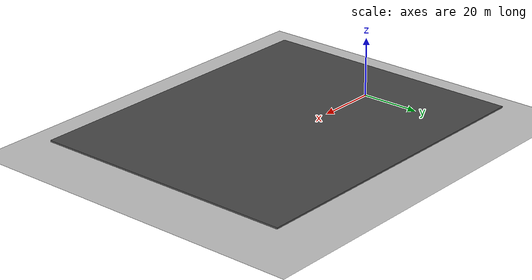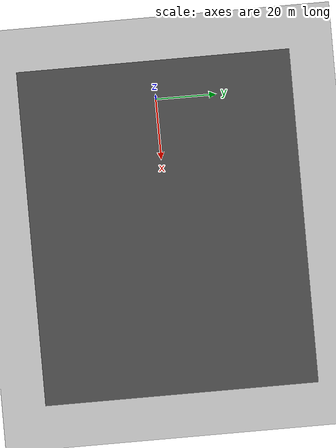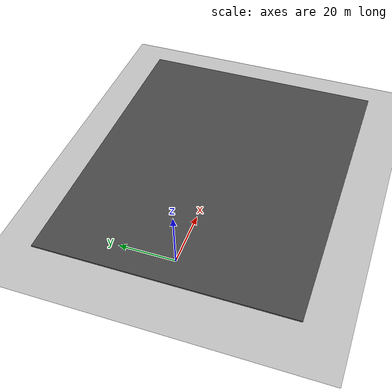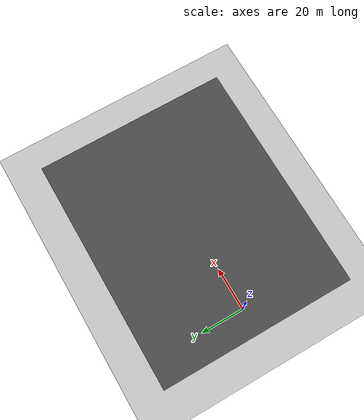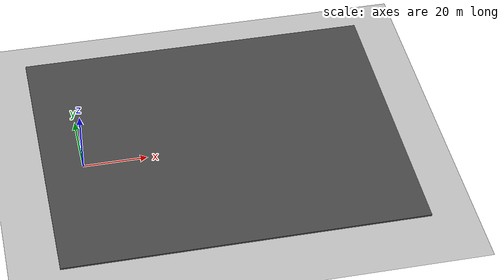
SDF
<?xml version="1.0"?>
<sdf version="1.6">
  <world name="default">
    <include><uri>model://sun</uri></include>
    <include><uri>model://ground_plane</uri></include>
    <plugin name="ros_interface_plugin" filename="librotors_gazebo_ros_interface_plugin.so"/>

    <model name="unseen_mine_shell">
      <static>true</static>
      <link name="shell">
        <!-- Main drift walls, with openings at x=25 north and x=60 both sides. -->
        <collision name="main_north_0_c"><pose>8 4 2 0 0 0</pose><geometry><box><size>26 0.5 4</size></box></geometry></collision>
        <visual name="main_north_0_v"><pose>8 4 2 0 0 0</pose><geometry><box><size>26 0.5 4</size></box></geometry><material><script><name>Gazebo/Grey</name></script></material></visual>
        <collision name="main_north_1_c"><pose>42.5 4 2 0 0 0</pose><geometry><box><size>27 0.5 4</size></box></geometry></collision>
        <visual name="main_north_1_v"><pose>42.5 4 2 0 0 0</pose><geometry><box><size>27 0.5 4</size></box></geometry><material><script><name>Gazebo/Grey</name></script></material></visual>
        <collision name="main_north_2_c"><pose>77 4 2 0 0 0</pose><geometry><box><size>26 0.5 4</size></box></geometry></collision>
        <visual name="main_north_2_v"><pose>77 4 2 0 0 0</pose><geometry><box><size>26 0.5 4</size></box></geometry><material><script><name>Gazebo/Grey</name></script></material></visual>
        <collision name="main_south_0_c"><pose>25.5 -4 2 0 0 0</pose><geometry><box><size>61 0.5 4</size></box></geometry></collision>
        <visual name="main_south_0_v"><pose>25.5 -4 2 0 0 0</pose><geometry><box><size>61 0.5 4</size></box></geometry><material><script><name>Gazebo/Grey</name></script></material></visual>
        <collision name="main_south_1_c"><pose>77 -4 2 0 0 0</pose><geometry><box><size>26 0.5 4</size></box></geometry></collision>
        <visual name="main_south_1_v"><pose>77 -4 2 0 0 0</pose><geometry><box><size>26 0.5 4</size></box></geometry><material><script><name>Gazebo/Grey</name></script></material></visual>
        <collision name="main_west_end_c"><pose>-5 0 2 0 0 0</pose><geometry><box><size>0.5 8 4</size></box></geometry></collision>
        <visual name="main_west_end_v"><pose>-5 0 2 0 0 0</pose><geometry><box><size>0.5 8 4</size></box></geometry><material><script><name>Gazebo/Grey</name></script></material></visual>
        <collision name="main_east_end_c"><pose>90 0 2 0 0 0</pose><geometry><box><size>0.5 8 4</size></box></geometry></collision>
        <visual name="main_east_end_v"><pose>90 0 2 0 0 0</pose><geometry><box><size>0.5 8 4</size></box></geometry><material><script><name>Gazebo/Grey</name></script></material></visual>

        <!-- North loop: legs at x=25/60 and connecting drift at y=30. -->
        <collision name="west_leg_w_c"><pose>21 15 2 0 0 0</pose><geometry><box><size>0.5 22 4</size></box></geometry></collision>
        <visual name="west_leg_w_v"><pose>21 15 2 0 0 0</pose><geometry><box><size>0.5 22 4</size></box></geometry><material><script><name>Gazebo/Grey</name></script></material></visual>
        <collision name="west_leg_e_c"><pose>29 15 2 0 0 0</pose><geometry><box><size>0.5 22 4</size></box></geometry></collision>
        <visual name="west_leg_e_v"><pose>29 15 2 0 0 0</pose><geometry><box><size>0.5 22 4</size></box></geometry><material><script><name>Gazebo/Grey</name></script></material></visual>
        <collision name="east_leg_w_c"><pose>56 15 2 0 0 0</pose><geometry><box><size>0.5 22 4</size></box></geometry></collision>
        <visual name="east_leg_w_v"><pose>56 15 2 0 0 0</pose><geometry><box><size>0.5 22 4</size></box></geometry><material><script><name>Gazebo/Grey</name></script></material></visual>
        <collision name="east_leg_e_c"><pose>64 15 2 0 0 0</pose><geometry><box><size>0.5 22 4</size></box></geometry></collision>
        <visual name="east_leg_e_v"><pose>64 15 2 0 0 0</pose><geometry><box><size>0.5 22 4</size></box></geometry><material><script><name>Gazebo/Grey</name></script></material></visual>
        <collision name="loop_south_c"><pose>42.5 26 2 0 0 0</pose><geometry><box><size>27 0.5 4</size></box></geometry></collision>
        <visual name="loop_south_v"><pose>42.5 26 2 0 0 0</pose><geometry><box><size>27 0.5 4</size></box></geometry><material><script><name>Gazebo/Grey</name></script></material></visual>
        <collision name="loop_north_c"><pose>42.5 34 2 0 0 0</pose><geometry><box><size>43 0.5 4</size></box></geometry></collision>
        <visual name="loop_north_v"><pose>42.5 34 2 0 0 0</pose><geometry><box><size>43 0.5 4</size></box></geometry><material><script><name>Gazebo/Grey</name></script></material></visual>

        <!-- A genuine geometric bottleneck in the loop's upper drift. -->
        <collision name="bottleneck_s_c"><pose>42.5 27.25 2 0 0 0</pose><geometry><box><size>4 2 4</size></box></geometry></collision>
        <visual name="bottleneck_s_v"><pose>42.5 27.25 2 0 0 0</pose><geometry><box><size>4 2 4</size></box></geometry><material><script><name>Gazebo/DarkGrey</name></script></material></visual>
        <collision name="bottleneck_n_c"><pose>42.5 32.75 2 0 0 0</pose><geometry><box><size>4 2 4</size></box></geometry></collision>
        <visual name="bottleneck_n_v"><pose>42.5 32.75 2 0 0 0</pose><geometry><box><size>4 2 4</size></box></geometry><material><script><name>Gazebo/DarkGrey</name></script></material></visual>

        <!-- South dead-end branching from the main drift at x=60. -->
        <collision name="south_branch_w_c"><pose>56 -19.5 2 0 0 0</pose><geometry><box><size>0.5 31 4</size></box></geometry></collision>
        <visual name="south_branch_w_v"><pose>56 -19.5 2 0 0 0</pose><geometry><box><size>0.5 31 4</size></box></geometry><material><script><name>Gazebo/Grey</name></script></material></visual>
        <collision name="south_branch_e_c"><pose>64 -19.5 2 0 0 0</pose><geometry><box><size>0.5 31 4</size></box></geometry></collision>
        <visual name="south_branch_e_v"><pose>64 -19.5 2 0 0 0</pose><geometry><box><size>0.5 31 4</size></box></geometry><material><script><name>Gazebo/Grey</name></script></material></visual>
        <collision name="south_end_c"><pose>60 -35 2 0 0 0</pose><geometry><box><size>8 0.5 4</size></box></geometry></collision>
        <visual name="south_end_v"><pose>60 -35 2 0 0 0</pose><geometry><box><size>8 0.5 4</size></box></geometry><material><script><name>Gazebo/Grey</name></script></material></visual>

        <!-- Low roof makes the validation scene explicitly underground. -->
        <collision name="roof_c"><pose>42.5 0 4.25 0 0 0</pose><geometry><box><size>110 90 0.5</size></box></geometry></collision>
        <visual name="roof_v"><pose>42.5 0 4.25 0 0 0</pose><geometry><box><size>110 90 0.5</size></box></geometry><material><script><name>Gazebo/DarkGrey</name></script></material></visual>
      </link>
    </model>

    <spherical_coordinates>
      <surface_model>EARTH_WGS84</surface_model><latitude_deg>47.3667</latitude_deg>
      <longitude_deg>8.55</longitude_deg><elevation>500</elevation><heading_deg>0</heading_deg>
    </spherical_coordinates>
    <physics type="ode"><ode><solver><type>quick</type><iters>1000</iters><sor>1.3</sor></solver>
      <constraints><cfm>0</cfm><erp>0.2</erp><contact_max_correcting_vel>100</contact_max_correcting_vel><contact_surface_layer>0.001</contact_surface_layer></constraints>
    </ode><max_step_size>0.001</max_step_size><real_time_factor>1</real_time_factor><real_time_update_rate>1000</real_time_update_rate><gravity>0 0 -9.8</gravity></physics>
  </world>
</sdf>
